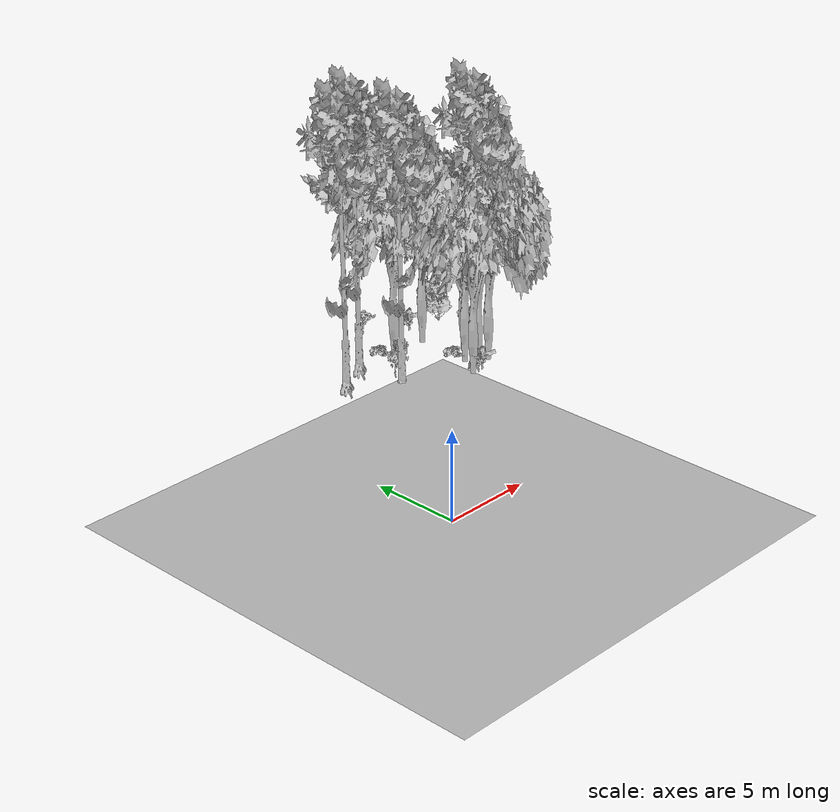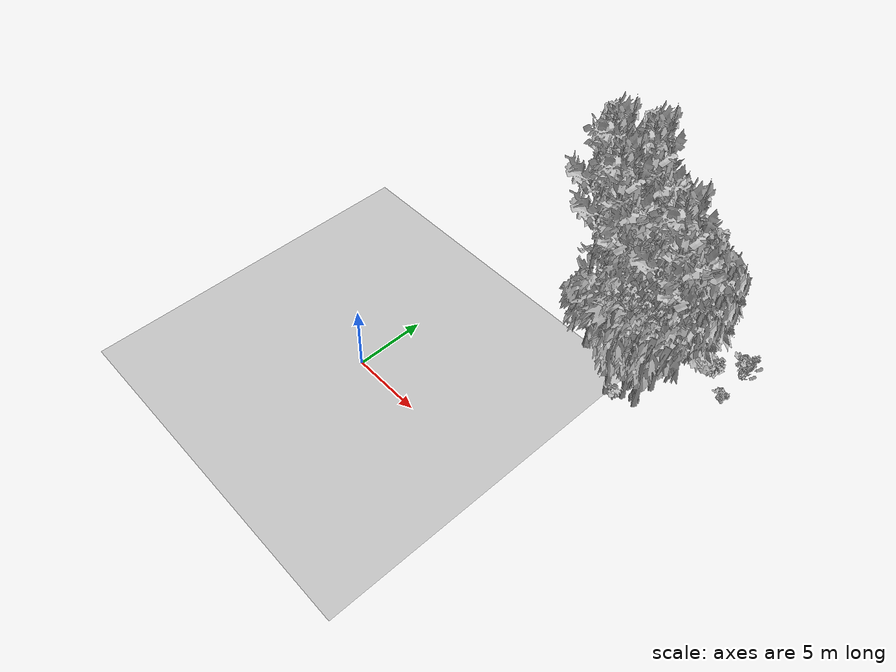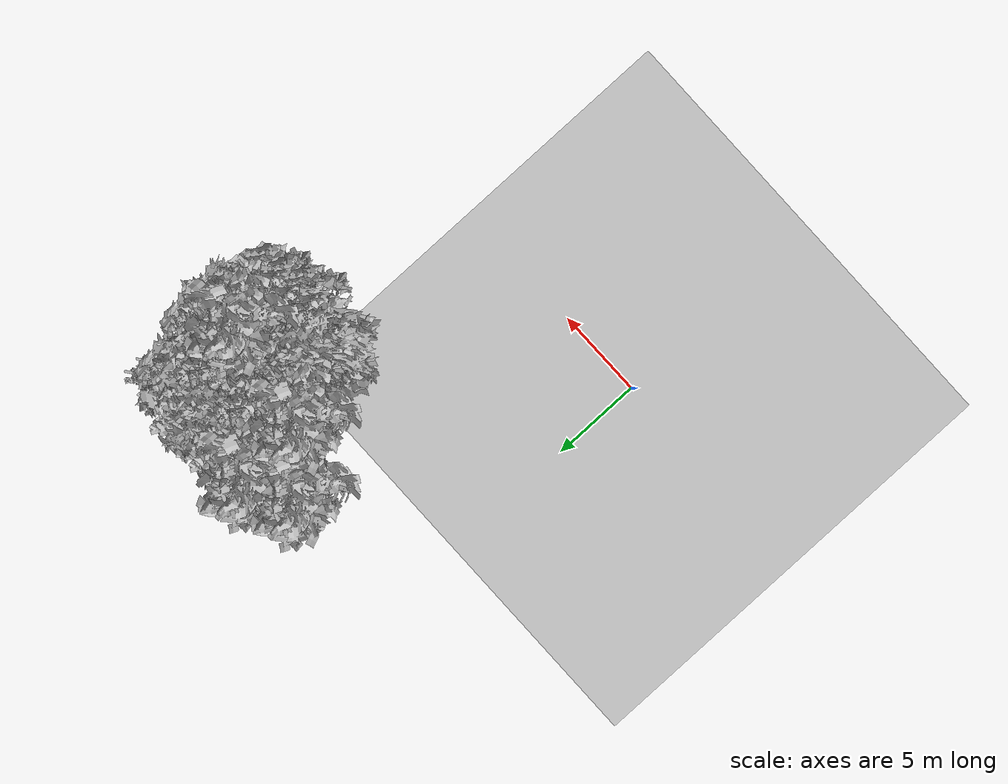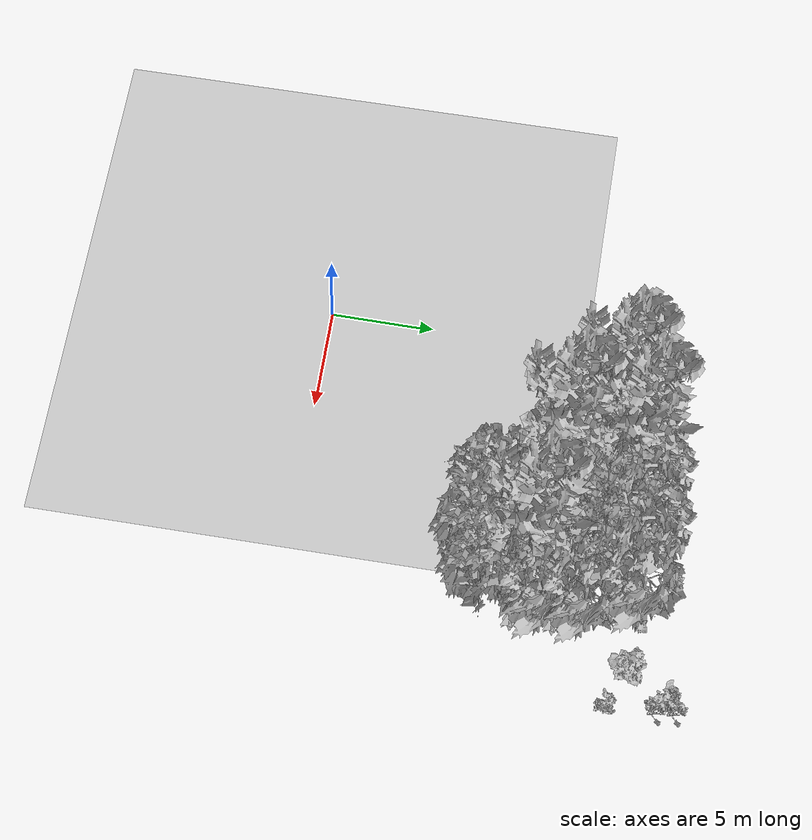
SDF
<sdf version="1.7">
 <world name="default">
  <model name="ground_plane">
   <static>1</static>
   <link name="link">
    <collision name="collision">
     <pose>-50 0 0 0 -0 0</pose>
     <geometry><plane><normal>0 0 1</normal><size>80 80</size></plane></geometry>
     <surface><contact><ode><min_depth>0.01</min_depth><max_vel>0</max_vel></ode></contact></surface>
    </collision>
    <visual name="grass">
     <cast_shadows>0</cast_shadows>
     <geometry>
      <mesh>
       <scale>0.46714285714285714 0.46714285714285714 0.1</scale>
       <uri>file://grass_plane/meshes/grass_plane.dae</uri>
      </mesh>
     </geometry>
    </visual>
   </link>
  </model>
  <model name="Tree 51">
   <static>1</static>
   <pose>12.449817065813448 10.22833838091907 0 1.57079 -0 0</pose>
   <link name="link">
    <collision name="collision">
     <geometry><mesh><scale>3.5 5 3.5</scale><uri>model://tree_2/meshes/tree_2.obj</uri></mesh></geometry>
    </collision>
    <visual name="visual">
     <geometry><mesh><scale>3.5 5 3.5</scale><uri>model://tree_2/meshes/tree_2.obj</uri></mesh></geometry>
    </visual>
   </link>
  </model>
  <model name="Tree 58">
   <static>1</static>
   <pose>13.427936020036235 10.776420866136682 0 1.57079 -0 0</pose>
   <link name="link">
    <collision name="collision">
     <geometry><mesh><scale>3.5 5 3.5</scale><uri>model://tree_2/meshes/tree_2.obj</uri></mesh></geometry>
    </collision>
    <visual name="visual">
     <geometry><mesh><scale>3.5 5 3.5</scale><uri>model://tree_2/meshes/tree_2.obj</uri></mesh></geometry>
    </visual>
   </link>
  </model>
  <model name="Tree 155">
   <static>1</static>
   <pose>14.349776262493059 10.835051867562854 0 1.57079 -0 0</pose>
   <link name="link">
    <collision name="collision">
     <geometry><mesh><scale>3.5 5 3.5</scale><uri>model://tree_2/meshes/tree_2.obj</uri></mesh></geometry>
    </collision>
    <visual name="visual">
     <geometry><mesh><scale>3.5 5 3.5</scale><uri>model://tree_2/meshes/tree_2.obj</uri></mesh></geometry>
    </visual>
   </link>
  </model>
  <model name="Tree 159">
   <static>1</static>
   <pose>10.920336291134745 14.865398418404212 0 1.57079 -0 0</pose>
   <link name="link">
    <collision name="collision">
     <geometry><mesh><scale>3.5 5 3.5</scale><uri>model://tree_2/meshes/tree_2.obj</uri></mesh></geometry>
    </collision>
    <visual name="visual">
     <geometry><mesh><scale>3.5 5 3.5</scale><uri>model://tree_2/meshes/tree_2.obj</uri></mesh></geometry>
    </visual>
   </link>
  </model>
  <model name="Tree 193">
   <static>1</static>
   <pose>9.068874670193473 12.348888633800897 0 1.57079 -0 0</pose>
   <link name="link">
    <collision name="collision">
     <geometry><mesh><scale>3.5 5 3.5</scale><uri>model://tree_9/meshes/tree_9.obj</uri></mesh></geometry>
    </collision>
    <visual name="visual">
     <geometry><mesh><scale>3.5 5 3.5</scale><uri>model://tree_9/meshes/tree_9.obj</uri></mesh></geometry>
    </visual>
   </link>
  </model>
  <model name="Tree 233">
   <static>1</static>
   <pose>13.24042794308236 11.591474432894053 0 1.57079 -0 0</pose>
   <link name="link">
    <collision name="collision">
     <geometry><mesh><scale>3.5 5 3.5</scale><uri>model://tree_2/meshes/tree_2.obj</uri></mesh></geometry>
    </collision>
    <visual name="visual">
     <geometry><mesh><scale>3.5 5 3.5</scale><uri>model://tree_2/meshes/tree_2.obj</uri></mesh></geometry>
    </visual>
   </link>
  </model>
  <model name="Tree 312">
   <static>1</static>
   <pose>6.832900408805848 14.419753253793203 0 1.57079 -0 0</pose>
   <link name="link">
    <collision name="collision">
     <geometry><mesh><scale>3.5 5 3.5</scale><uri>model://tree_9/meshes/tree_9.obj</uri></mesh></geometry>
    </collision>
    <visual name="visual">
     <geometry><mesh><scale>3.5 5 3.5</scale><uri>model://tree_9/meshes/tree_9.obj</uri></mesh></geometry>
    </visual>
   </link>
  </model>
  <model name="Tree 420">
   <static>1</static>
   <pose>14.270791382891716 12.65926238655912 0 1.57079 -0 0</pose>
   <link name="link">
    <collision name="collision">
     <geometry><mesh><scale>3.5 5 3.5</scale><uri>model://tree_2/meshes/tree_2.obj</uri></mesh></geometry>
    </collision>
    <visual name="visual">
     <geometry><mesh><scale>3.5 5 3.5</scale><uri>model://tree_2/meshes/tree_2.obj</uri></mesh></geometry>
    </visual>
   </link>
  </model>
  <model name="Tree 421">
   <static>1</static>
   <pose>8.864638409051558 15.48474453887772 0 1.57079 -0 0</pose>
   <link name="link">
    <collision name="collision">
     <geometry><mesh><scale>3.5 5 3.5</scale><uri>model://tree_9/meshes/tree_9.obj</uri></mesh></geometry>
    </collision>
    <visual name="visual">
     <geometry><mesh><scale>3.5 5 3.5</scale><uri>model://tree_9/meshes/tree_9.obj</uri></mesh></geometry>
    </visual>
   </link>
  </model>
  <model name="Tree 457">
   <static>1</static>
   <pose>14.01300389151853 11.52155935942669 0 1.57079 -0 0</pose>
   <link name="link">
    <collision name="collision">
     <geometry><mesh><scale>3.5 5 3.5</scale><uri>model://tree_9/meshes/tree_9.obj</uri></mesh></geometry>
    </collision>
    <visual name="visual">
     <geometry><mesh><scale>3.5 5 3.5</scale><uri>model://tree_9/meshes/tree_9.obj</uri></mesh></geometry>
    </visual>
   </link>
  </model>
  <model name="Tree 563">
   <static>1</static>
   <pose>13.374224913068183 15.038705185769231 0 1.57079 -0 0</pose>
   <link name="link">
    <collision name="collision">
     <geometry><mesh><scale>3.5 5 3.5</scale><uri>model://tree_2/meshes/tree_2.obj</uri></mesh></geometry>
    </collision>
    <visual name="visual">
     <geometry><mesh><scale>3.5 5 3.5</scale><uri>model://tree_2/meshes/tree_2.obj</uri></mesh></geometry>
    </visual>
   </link>
  </model>
  <model name="Bush 125">
   <static>1</static>
   <pose>13.430052183782486 12.665117958335166 0 1.57079 -0 0</pose>
   <link name="link">
    <collision name="collision">
     <geometry><mesh><scale>2 2 2</scale><uri>model://bush_2/meshes/bush_2.obj</uri></mesh></geometry>
     <surface><contact><collide_without_contact>false</collide_without_contact></contact></surface>
    </collision>
    <visual name="visual">
     <geometry><mesh><scale>2 2 2</scale><uri>model://bush_2/meshes/bush_2.obj</uri></mesh></geometry>
    </visual>
   </link>
  </model>
  <model name="Bush 176">
   <static>1</static>
   <pose>17.758101166170547 15.661507714946936 0 1.57079 -0 0</pose>
   <link name="link">
    <collision name="collision">
     <geometry><mesh><scale>2 2 2</scale><uri>model://bush_2/meshes/bush_2.obj</uri></mesh></geometry>
     <surface><contact><collide_without_contact>false</collide_without_contact></contact></surface>
    </collision>
    <visual name="visual">
     <geometry><mesh><scale>2 2 2</scale><uri>model://bush_2/meshes/bush_2.obj</uri></mesh></geometry>
    </visual>
   </link>
  </model>
  <model name="Bush 194">
   <static>1</static>
   <pose>17.4286237998477 18.48827024166843 0 1.57079 -0 0</pose>
   <link name="link">
    <collision name="collision">
     <geometry><mesh><scale>2 2 2</scale><uri>model://bush_0/meshes/bush_0.obj</uri></mesh></geometry>
     <surface><contact><collide_without_contact>false</collide_without_contact></contact></surface>
    </collision>
    <visual name="visual">
     <geometry><mesh><scale>2 2 2</scale><uri>model://bush_0/meshes/bush_0.obj</uri></mesh></geometry>
    </visual>
   </link>
  </model>
  <model name="Bush 203">
   <static>1</static>
   <pose>17.842249706006477 17.81571300737391 0 1.57079 -0 0</pose>
   <link name="link">
    <collision name="collision">
     <geometry><mesh><scale>2 2 2</scale><uri>model://bush_4/meshes/bush_4.obj</uri></mesh></geometry>
     <surface><contact><collide_without_contact>false</collide_without_contact></contact></surface>
    </collision>
    <visual name="visual">
     <geometry><mesh><scale>2 2 2</scale><uri>model://bush_4/meshes/bush_4.obj</uri></mesh></geometry>
    </visual>
   </link>
  </model>
  <model name="Bush 226">
   <static>1</static>
   <pose>17.751433429263002 18.718569073476566 0 1.57079 -0 0</pose>
   <link name="link">
    <collision name="collision">
     <geometry><mesh><scale>2 2 2</scale><uri>model://bush_4/meshes/bush_4.obj</uri></mesh></geometry>
     <surface><contact><collide_without_contact>false</collide_without_contact></contact></surface>
    </collision>
    <visual name="visual">
     <geometry><mesh><scale>2 2 2</scale><uri>model://bush_4/meshes/bush_4.obj</uri></mesh></geometry>
    </visual>
   </link>
  </model>
  <model name="Bush 297">
   <static>1</static>
   <pose>16.154448205942195 16.325335939714833 0 1.57079 -0 0</pose>
   <link name="link">
    <collision name="collision">
     <geometry><mesh><scale>2 2 2</scale><uri>model://bush_1/meshes/bush_1.obj</uri></mesh></geometry>
     <surface><contact><collide_without_contact>false</collide_without_contact></contact></surface>
    </collision>
    <visual name="visual">
     <geometry><mesh><scale>2 2 2</scale><uri>model://bush_1/meshes/bush_1.obj</uri></mesh></geometry>
    </visual>
   </link>
  </model>
  <model name="Bush 310">
   <static>1</static>
   <pose>10.67581881920863 15.759899870482641 0 1.57079 -0 0</pose>
   <link name="link">
    <collision name="collision">
     <geometry><mesh><scale>2 2 2</scale><uri>model://bush_2/meshes/bush_2.obj</uri></mesh></geometry>
     <surface><contact><collide_without_contact>false</collide_without_contact></contact></surface>
    </collision>
    <visual name="visual">
     <geometry><mesh><scale>2 2 2</scale><uri>model://bush_2/meshes/bush_2.obj</uri></mesh></geometry>
    </visual>
   </link>
  </model>
  <model name="Bush 343">
   <static>1</static>
   <pose>11.795304203174041 18.15650439731047 0 1.57079 -0 0</pose>
   <link name="link">
    <collision name="collision">
     <geometry><mesh><scale>2 2 2</scale><uri>model://bush_5/meshes/bush_5.obj</uri></mesh></geometry>
     <surface><contact><collide_without_contact>false</collide_without_contact></contact></surface>
    </collision>
    <visual name="visual">
     <geometry><mesh><scale>2 2 2</scale><uri>model://bush_5/meshes/bush_5.obj</uri></mesh></geometry>
    </visual>
   </link>
  </model>
  <model name="Bush 397">
   <static>1</static>
   <pose>13.987407225357067 16.61294766586768 0 1.57079 -0 0</pose>
   <link name="link">
    <collision name="collision">
     <geometry><mesh><scale>2 2 2</scale><uri>model://bush_0/meshes/bush_0.obj</uri></mesh></geometry>
     <surface><contact><collide_without_contact>false</collide_without_contact></contact></surface>
    </collision>
    <visual name="visual">
     <geometry><mesh><scale>2 2 2</scale><uri>model://bush_0/meshes/bush_0.obj</uri></mesh></geometry>
    </visual>
   </link>
  </model>
  <model name="Bush 435">
   <static>1</static>
   <pose>10.598476792321854 14.021999414891447 0 1.57079 -0 0</pose>
   <link name="link">
    <collision name="collision">
     <geometry><mesh><scale>2 2 2</scale><uri>model://bush_4/meshes/bush_4.obj</uri></mesh></geometry>
     <surface><contact><collide_without_contact>false</collide_without_contact></contact></surface>
    </collision>
    <visual name="visual">
     <geometry><mesh><scale>2 2 2</scale><uri>model://bush_4/meshes/bush_4.obj</uri></mesh></geometry>
    </visual>
   </link>
  </model>
  <model name="Bush 502">
   <static>1</static>
   <pose>9.201500381756148 12.95750218297335 0 1.57079 -0 0</pose>
   <link name="link">
    <collision name="collision">
     <geometry><mesh><scale>2 2 2</scale><uri>model://bush_5/meshes/bush_5.obj</uri></mesh></geometry>
     <surface><contact><collide_without_contact>false</collide_without_contact></contact></surface>
    </collision>
    <visual name="visual">
     <geometry><mesh><scale>2 2 2</scale><uri>model://bush_5/meshes/bush_5.obj</uri></mesh></geometry>
    </visual>
   </link>
  </model>
  <model name="Bush 574">
   <static>1</static>
   <pose>13.202978749260112 10.17544174058635 0 1.57079 -0 0</pose>
   <link name="link">
    <collision name="collision">
     <geometry><mesh><scale>2 2 2</scale><uri>model://bush_0/meshes/bush_0.obj</uri></mesh></geometry>
     <surface><contact><collide_without_contact>false</collide_without_contact></contact></surface>
    </collision>
    <visual name="visual">
     <geometry><mesh><scale>2 2 2</scale><uri>model://bush_0/meshes/bush_0.obj</uri></mesh></geometry>
    </visual>
   </link>
  </model>
 </world>
</sdf>
